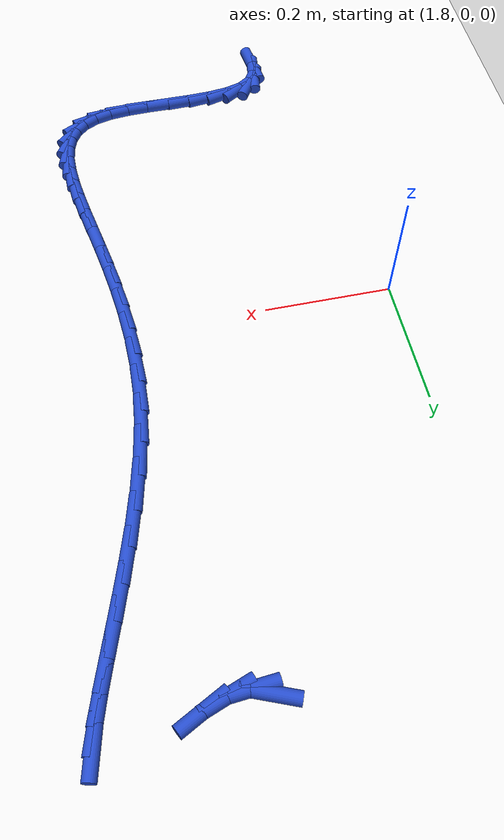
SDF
<sdf version="1.6">
 <world name="default">
  <model name="ground_plane">
   <static>1</static>
   <link name="link">
    <collision name="collision">
     <geometry><plane><normal>0 0 1</normal><size>100 100</size></plane></geometry>
     <surface><friction><ode><mu>100</mu><mu2>50</mu2></ode></friction></surface>
    </collision>
    <visual name="visual">
     <cast_shadows>0</cast_shadows>
     <geometry><plane><normal>0 0 1</normal><size>100 100</size></plane></geometry>
     <material>
      <script><uri>file://media/materials/scripts/gazebo.material</uri><name>Gazebo/WhiteGlow</name></script>
     </material>
    </visual>
   </link>
  </model>
  <model name="line">
   <link name="link_104">
    <pose>2.127107743171285 0.5627841252850406 0.01 0 1.57 -0.3819687283762479</pose>
    <collision name="collision">
     <geometry><cylinder><radius>0.01</radius><length>0.08</length></cylinder></geometry>
    </collision>
    <visual name="visual">
     <material>
      <script><name>Gazebo/Blue</name><uri>file://media/materials/scripts/gazebo.material</uri></script>
     </material>
     <geometry><cylinder><radius>0.01</radius><length>0.08</length></cylinder></geometry>
    </visual>
   </link>
   <link name="link_105">
    <pose>2.150986304245681 0.5531921712599882 0.01 0 1.57 0.07013213840415838</pose>
    <collision name="collision">
     <geometry><cylinder><radius>0.01</radius><length>0.08</length></cylinder></geometry>
    </collision>
    <visual name="visual">
     <material>
      <script><name>Gazebo/Blue</name><uri>file://media/materials/scripts/gazebo.material</uri></script>
     </material>
     <geometry><cylinder><radius>0.01</radius><length>0.08</length></cylinder></geometry>
    </visual>
   </link>
   <link name="link_106">
    <pose>2.179971391578921 0.5552282967507947 0.01 0 1.57 0.33298980344170676</pose>
    <collision name="collision">
     <geometry><cylinder><radius>0.01</radius><length>0.08</length></cylinder></geometry>
    </collision>
    <visual name="visual">
     <material>
      <script><name>Gazebo/Blue</name><uri>file://media/materials/scripts/gazebo.material</uri></script>
     </material>
     <geometry><cylinder><radius>0.01</radius><length>0.08</length></cylinder></geometry>
    </visual>
   </link>
   <link name="link_107">
    <pose>2.2124808614995484 0.5664723106703847 0.01 0 1.57 0.4560387867615656</pose>
    <collision name="collision">
     <geometry><cylinder><radius>0.01</radius><length>0.08</length></cylinder></geometry>
    </collision>
    <visual name="visual">
     <material>
      <script><name>Gazebo/Blue</name><uri>file://media/materials/scripts/gazebo.material</uri></script>
     </material>
     <geometry><cylinder><radius>0.01</radius><length>0.08</length></cylinder></geometry>
    </visual>
   </link>
   <link name="link_115">
    <pose>2.349207983742236 0.5794502217395547 0.01 0 1.57 1.3211868700105327</pose>
    <collision name="collision">
     <geometry><cylinder><radius>0.01</radius><length>0.08</length></cylinder></geometry>
    </collision>
    <visual name="visual">
     <material>
      <script><name>Gazebo/Blue</name><uri>file://media/materials/scripts/gazebo.material</uri></script>
     </material>
     <geometry><cylinder><radius>0.01</radius><length>0.08</length></cylinder></geometry>
    </visual>
   </link>
   <link name="link_116">
    <pose>2.342331722594804 0.5524766594991933 0.01 0 1.57 1.2618347544364554</pose>
    <collision name="collision">
     <geometry><cylinder><radius>0.01</radius><length>0.08</length></cylinder></geometry>
    </collision>
    <visual name="visual">
     <material>
      <script><name>Gazebo/Blue</name><uri>file://media/materials/scripts/gazebo.material</uri></script>
     </material>
     <geometry><cylinder><radius>0.01</radius><length>0.08</length></cylinder></geometry>
    </visual>
   </link>
   <link name="link_117">
    <pose>2.332085344422385 0.5203747580130524 0.01 0 1.57 1.233314412910958</pose>
    <collision name="collision">
     <geometry><cylinder><radius>0.01</radius><length>0.08</length></cylinder></geometry>
    </collision>
    <visual name="visual">
     <material>
      <script><name>Gazebo/Blue</name><uri>file://media/materials/scripts/gazebo.material</uri></script>
     </material>
     <geometry><cylinder><radius>0.01</radius><length>0.08</length></cylinder></geometry>
    </visual>
   </link>
   <link name="link_118">
    <pose>2.3192428652079937 0.4837767198730759 0.01 0 1.57 1.223092702510668</pose>
    <collision name="collision">
     <geometry><cylinder><radius>0.01</radius><length>0.08</length></cylinder></geometry>
    </collision>
    <visual name="visual">
     <material>
      <script><name>Gazebo/Blue</name><uri>file://media/materials/scripts/gazebo.material</uri></script>
     </material>
     <geometry><cylinder><radius>0.01</radius><length>0.08</length></cylinder></geometry>
    </visual>
   </link>
   <link name="link_119">
    <pose>2.3045783009346468 0.4433147476712101 0.01 0 1.57 1.2255872484355421</pose>
    <collision name="collision">
     <geometry><cylinder><radius>0.01</radius><length>0.08</length></cylinder></geometry>
    </collision>
    <visual name="visual">
     <material>
      <script><name>Gazebo/Blue</name><uri>file://media/materials/scripts/gazebo.material</uri></script>
     </material>
     <geometry><cylinder><radius>0.01</radius><length>0.08</length></cylinder></geometry>
    </visual>
   </link>
   <link name="link_120">
    <pose>2.2888656675853594 0.39962104399939913 0.01 0 1.57 1.238283188715946</pose>
    <collision name="collision">
     <geometry><cylinder><radius>0.01</radius><length>0.08</length></cylinder></geometry>
    </collision>
    <visual name="visual">
     <material>
      <script><name>Gazebo/Blue</name><uri>file://media/materials/scripts/gazebo.material</uri></script>
     </material>
     <geometry><cylinder><radius>0.01</radius><length>0.08</length></cylinder></geometry>
    </visual>
   </link>
   <link name="link_121">
    <pose>2.2728789811431476 0.3533278114495876 0.01 0 1.57 1.260278881683816</pose>
    <collision name="collision">
     <geometry><cylinder><radius>0.01</radius><length>0.08</length></cylinder></geometry>
    </collision>
    <visual name="visual">
     <material>
      <script><name>Gazebo/Blue</name><uri>file://media/materials/scripts/gazebo.material</uri></script>
     </material>
     <geometry><cylinder><radius>0.01</radius><length>0.08</length></cylinder></geometry>
    </visual>
   </link>
   <link name="link_122">
    <pose>2.2573922575910266 0.3050672526137209 0.01 0 1.57 1.2917036662351318</pose>
    <collision name="collision">
     <geometry><cylinder><radius>0.01</radius><length>0.08</length></cylinder></geometry>
    </collision>
    <visual name="visual">
     <material>
      <script><name>Gazebo/Blue</name><uri>file://media/materials/scripts/gazebo.material</uri></script>
     </material>
     <geometry><cylinder><radius>0.01</radius><length>0.08</length></cylinder></geometry>
    </visual>
   </link>
   <link name="link_123">
    <pose>2.243179512912013 0.2554715700837427 0.01 0 1.57 1.3335022272591208</pose>
    <collision name="collision">
     <geometry><cylinder><radius>0.01</radius><length>0.08</length></cylinder></geometry>
    </collision>
    <visual name="visual">
     <material>
      <script><name>Gazebo/Blue</name><uri>file://media/materials/scripts/gazebo.material</uri></script>
     </material>
     <geometry><cylinder><radius>0.01</radius><length>0.08</length></cylinder></geometry>
    </visual>
   </link>
   <link name="link_124">
    <pose>2.2310147630891226 0.2051729664515995 0.01 0 1.57 1.387395933881597</pose>
    <collision name="collision">
     <geometry><cylinder><radius>0.01</radius><length>0.08</length></cylinder></geometry>
    </collision>
    <visual name="visual">
     <material>
      <script><name>Gazebo/Blue</name><uri>file://media/materials/scripts/gazebo.material</uri></script>
     </material>
     <geometry><cylinder><radius>0.01</radius><length>0.08</length></cylinder></geometry>
    </visual>
   </link>
   <link name="link_125">
    <pose>2.2216720241053705 0.15480364430923535 0.01 0 1.57 1.4547579990284305</pose>
    <collision name="collision">
     <geometry><cylinder><radius>0.01</radius><length>0.08</length></cylinder></geometry>
    </collision>
    <visual name="visual">
     <material>
      <script><name>Gazebo/Blue</name><uri>file://media/materials/scripts/gazebo.material</uri></script>
     </material>
     <geometry><cylinder><radius>0.01</radius><length>0.08</length></cylinder></geometry>
    </visual>
   </link>
   <link name="link_126">
    <pose>2.2158638613069424 0.10497467215604218 0.01 0 1.57 1.5235692400605285</pose>
    <collision name="collision">
     <geometry><cylinder><radius>0.01</radius><length>0.08</length></cylinder></geometry>
    </collision>
    <visual name="visual">
     <material>
      <script><name>Gazebo/Blue</name><uri>file://media/materials/scripts/gazebo.material</uri></script>
     </material>
     <geometry><cylinder><radius>0.01</radius><length>0.08</length></cylinder></geometry>
    </visual>
   </link>
   <link name="link_127">
    <pose>2.213551031366264 0.05603855658038532 0.01 0 1.57 -1.5574294629648497</pose>
    <collision name="collision">
     <geometry><cylinder><radius>0.01</radius><length>0.08</length></cylinder></geometry>
    </collision>
    <visual name="visual">
     <material>
      <script><name>Gazebo/Blue</name><uri>file://media/materials/scripts/gazebo.material</uri></script>
     </material>
     <geometry><cylinder><radius>0.01</radius><length>0.08</length></cylinder></geometry>
    </visual>
   </link>
   <link name="link_128">
    <pose>2.2141908596059445 0.008174664146546108 0.01 0 1.57 -1.5056623127815352</pose>
    <collision name="collision">
     <geometry><cylinder><radius>0.01</radius><length>0.08</length></cylinder></geometry>
    </collision>
    <visual name="visual">
     <material>
      <script><name>Gazebo/Blue</name><uri>file://media/materials/scripts/gazebo.material</uri></script>
     </material>
     <geometry><cylinder><radius>0.01</radius><length>0.08</length></cylinder></geometry>
    </visual>
   </link>
   <link name="link_129">
    <pose>2.21723141435651 -0.038440822244334365 0.01 0 1.57 -1.463022308774857</pose>
    <collision name="collision">
     <geometry><cylinder><radius>0.01</radius><length>0.08</length></cylinder></geometry>
    </collision>
    <visual name="visual">
     <material>
      <script><name>Gazebo/Blue</name><uri>file://media/materials/scripts/gazebo.material</uri></script>
     </material>
     <geometry><cylinder><radius>0.01</radius><length>0.08</length></cylinder></geometry>
    </visual>
   </link>
   <link name="link_130">
    <pose>2.222120763948486 -0.08363171969111516 0.01 0 1.57 -1.4298199931551037</pose>
    <collision name="collision">
     <geometry><cylinder><radius>0.01</radius><length>0.08</length></cylinder></geometry>
    </collision>
    <visual name="visual">
     <material>
      <script><name>Gazebo/Blue</name><uri>file://media/materials/scripts/gazebo.material</uri></script>
     </material>
     <geometry><cylinder><radius>0.01</radius><length>0.08</length></cylinder></geometry>
    </visual>
   </link>
   <link name="link_131">
    <pose>2.2283069767123997 -0.1272218452926551 0.01 0 1.57 -1.4065254471774</pose>
    <collision name="collision">
     <geometry><cylinder><radius>0.01</radius><length>0.08</length></cylinder></geometry>
    </collision>
    <visual name="visual">
     <material>
      <script><name>Gazebo/Blue</name><uri>file://media/materials/scripts/gazebo.material</uri></script>
     </material>
     <geometry><cylinder><radius>0.01</radius><length>0.08</length></cylinder></geometry>
    </visual>
   </link>
   <link name="link_132">
    <pose>2.235238120978776 -0.16903501614781327 0.01 0 1.57 -1.393934767337975</pose>
    <collision name="collision">
     <geometry><cylinder><radius>0.01</radius><length>0.08</length></cylinder></geometry>
    </collision>
    <visual name="visual">
     <material>
      <script><name>Gazebo/Blue</name><uri>file://media/materials/scripts/gazebo.material</uri></script>
     </material>
     <geometry><cylinder><radius>0.01</radius><length>0.08</length></cylinder></geometry>
    </visual>
   </link>
   <link name="link_133">
    <pose>2.2423622650781416 -0.20889504935544972 0.01 0 1.57 -1.3933790511676274</pose>
    <collision name="collision">
     <geometry><cylinder><radius>0.01</radius><length>0.08</length></cylinder></geometry>
    </collision>
    <visual name="visual">
     <material>
      <script><name>Gazebo/Blue</name><uri>file://media/materials/scripts/gazebo.material</uri></script>
     </material>
     <geometry><cylinder><radius>0.01</radius><length>0.08</length></cylinder></geometry>
    </visual>
   </link>
   <link name="link_134">
    <pose>2.2491274773410206 -0.2466257620144211 0.01 0 1.57 -1.4070171951937955</pose>
    <collision name="collision">
     <geometry><cylinder><radius>0.01</radius><length>0.08</length></cylinder></geometry>
    </collision>
    <visual name="visual">
     <material>
      <script><name>Gazebo/Blue</name><uri>file://media/materials/scripts/gazebo.material</uri></script>
     </material>
     <geometry><cylinder><radius>0.01</radius><length>0.08</length></cylinder></geometry>
    </visual>
   </link>
   <link name="link_135">
    <pose>2.254981826097942 -0.28205097122358774 0.01 0 1.57 -1.4382721180454048</pose>
    <collision name="collision">
     <geometry><cylinder><radius>0.01</radius><length>0.08</length></cylinder></geometry>
    </collision>
    <visual name="visual">
     <material>
      <script><name>Gazebo/Blue</name><uri>file://media/materials/scripts/gazebo.material</uri></script>
     </material>
     <geometry><cylinder><radius>0.01</radius><length>0.08</length></cylinder></geometry>
    </visual>
   </link>
   <link name="link_136">
    <pose>2.259373379679427 -0.31499449408180813 0.01 0 1.57 -1.4924765727191125</pose>
    <collision name="collision">
     <geometry><cylinder><radius>0.01</radius><length>0.08</length></cylinder></geometry>
    </collision>
    <visual name="visual">
     <material>
      <script><name>Gazebo/Blue</name><uri>file://media/materials/scripts/gazebo.material</uri></script>
     </material>
     <geometry><cylinder><radius>0.01</radius><length>0.08</length></cylinder></geometry>
    </visual>
   </link>
   <link name="link_137">
    <pose>2.261750206416005 -0.34528014768794174 0.01 0 1.57 1.5638812929908679</pose>
    <collision name="collision">
     <geometry><cylinder><radius>0.01</radius><length>0.08</length></cylinder></geometry>
    </collision>
    <visual name="visual">
     <material>
      <script><name>Gazebo/Blue</name><uri>file://media/materials/scripts/gazebo.material</uri></script>
     </material>
     <geometry><cylinder><radius>0.01</radius><length>0.08</length></cylinder></geometry>
    </visual>
   </link>
   <link name="link_138">
    <pose>2.261560374638201 -0.3727317491408473 0.01 0 1.57 1.4362525081846227</pose>
    <collision name="collision">
     <geometry><cylinder><radius>0.01</radius><length>0.08</length></cylinder></geometry>
    </collision>
    <visual name="visual">
     <material>
      <script><name>Gazebo/Blue</name><uri>file://media/materials/scripts/gazebo.material</uri></script>
     </material>
     <geometry><cylinder><radius>0.01</radius><length>0.08</length></cylinder></geometry>
    </visual>
   </link>
   <link name="link_139">
    <pose>2.2582519526765403 -0.3971731155393837 0.01 0 1.57 1.2535424901701229</pose>
    <collision name="collision">
     <geometry><cylinder><radius>0.01</radius><length>0.08</length></cylinder></geometry>
    </collision>
    <visual name="visual">
     <material>
      <script><name>Gazebo/Blue</name><uri>file://media/materials/scripts/gazebo.material</uri></script>
     </material>
     <geometry><cylinder><radius>0.01</radius><length>0.08</length></cylinder></geometry>
    </visual>
   </link>
   <link name="link_140">
    <pose>2.2512730088615496 -0.41842806398241084 0.01 0 1.57 1.0114466026206448</pose>
    <collision name="collision">
     <geometry><cylinder><radius>0.01</radius><length>0.08</length></cylinder></geometry>
    </collision>
    <visual name="visual">
     <material>
      <script><name>Gazebo/Blue</name><uri>file://media/materials/scripts/gazebo.material</uri></script>
     </material>
     <geometry><cylinder><radius>0.01</radius><length>0.08</length></cylinder></geometry>
    </visual>
   </link>
   <link name="link_141">
    <pose>2.2400716115237542 -0.436320411568786 0.01 0 1.57 0.7319623139738143</pose>
    <collision name="collision">
     <geometry><cylinder><radius>0.01</radius><length>0.08</length></cylinder></geometry>
    </collision>
    <visual name="visual">
     <material>
      <script><name>Gazebo/Blue</name><uri>file://media/materials/scripts/gazebo.material</uri></script>
     </material>
     <geometry><cylinder><radius>0.01</radius><length>0.08</length></cylinder></geometry>
    </visual>
   </link>
   <link name="link_142">
    <pose>2.224095828993679 -0.45067397539736886 0.01 0 1.57 0.4631798452355047</pose>
    <collision name="collision">
     <geometry><cylinder><radius>0.01</radius><length>0.08</length></cylinder></geometry>
    </collision>
    <visual name="visual">
     <material>
      <script><name>Gazebo/Blue</name><uri>file://media/materials/scripts/gazebo.material</uri></script>
     </material>
     <geometry><cylinder><radius>0.01</radius><length>0.08</length></cylinder></geometry>
    </visual>
   </link>
   <link name="link_143">
    <pose>2.2027937296018525 -0.46131257256701885 0.01 0 1.57 0.24385880239161947</pose>
    <collision name="collision">
     <geometry><cylinder><radius>0.01</radius><length>0.08</length></cylinder></geometry>
    </collision>
    <visual name="visual">
     <material>
      <script><name>Gazebo/Blue</name><uri>file://media/materials/scripts/gazebo.material</uri></script>
     </material>
     <geometry><cylinder><radius>0.01</radius><length>0.08</length></cylinder></geometry>
    </visual>
   </link>
   <link name="link_144">
    <pose>2.175631782366532 -0.4680707497098349 0.01 0 1.57 0.09941860752321846</pose>
    <collision name="collision">
     <geometry><cylinder><radius>0.01</radius><length>0.08</length></cylinder></geometry>
    </collision>
    <visual name="visual">
     <material>
      <script><name>Gazebo/Blue</name><uri>file://media/materials/scripts/gazebo.material</uri></script>
     </material>
     <geometry><cylinder><radius>0.01</radius><length>0.08</length></cylinder></geometry>
    </visual>
   </link>
   <link name="link_145">
    <pose>2.1430060199396004 -0.4713250866715781 0.01 0 1.57 0.025126925178325567</pose>
    <collision name="collision">
     <geometry><cylinder><radius>0.01</radius><length>0.08</length></cylinder></geometry>
    </collision>
    <visual name="visual">
     <material>
      <script><name>Gazebo/Blue</name><uri>file://media/materials/scripts/gazebo.material</uri></script>
     </material>
     <geometry><cylinder><radius>0.01</radius><length>0.08</length></cylinder></geometry>
    </visual>
   </link>
   <link name="link_146">
    <pose>2.1066610370112104 -0.47223851658140964 0.01 0 1.57 -0.005307459929114949</pose>
    <collision name="collision">
     <geometry><cylinder><radius>0.01</radius><length>0.08</length></cylinder></geometry>
    </collision>
    <visual name="visual">
     <material>
      <script><name>Gazebo/Blue</name><uri>file://media/materials/scripts/gazebo.material</uri></script>
     </material>
     <geometry><cylinder><radius>0.01</radius><length>0.08</length></cylinder></geometry>
    </visual>
   </link>
   <link name="link_147">
    <pose>2.0684472825112943 -0.47203569670623685 0.01 0 1.57 -0.002469449959656698</pose>
    <collision name="collision">
     <geometry><cylinder><radius>0.01</radius><length>0.08</length></cylinder></geometry>
    </collision>
    <visual name="visual">
     <material>
      <script><name>Gazebo/Blue</name><uri>file://media/materials/scripts/gazebo.material</uri></script>
     </material>
     <geometry><cylinder><radius>0.01</radius><length>0.08</length></cylinder></geometry>
    </visual>
   </link>
   <link name="link_148">
    <pose>2.0302152053697835 -0.4719412843129674 0.01 0 1.57 0.03401583109435959</pose>
    <collision name="collision">
     <geometry><cylinder><radius>0.01</radius><length>0.08</length></cylinder></geometry>
    </collision>
    <visual name="visual">
     <material>
      <script><name>Gazebo/Blue</name><uri>file://media/materials/scripts/gazebo.material</uri></script>
     </material>
     <geometry><cylinder><radius>0.01</radius><length>0.08</length></cylinder></geometry>
    </visual>
   </link>
   <link name="link_149">
    <pose>1.9938152545166061 -0.4731799366685083 0.01 0 1.57 0.11551881007164766</pose>
    <collision name="collision">
     <geometry><cylinder><radius>0.01</radius><length>0.08</length></cylinder></geometry>
    </collision>
    <visual name="visual">
     <material>
      <script><name>Gazebo/Blue</name><uri>file://media/materials/scripts/gazebo.material</uri></script>
     </material>
     <geometry><cylinder><radius>0.01</radius><length>0.08</length></cylinder></geometry>
    </visual>
   </link>
   <link name="link_150">
    <pose>1.9610978788816966 -0.47697631103976734 0.01 0 1.57 0.2718872843589101</pose>
    <collision name="collision">
     <geometry><cylinder><radius>0.01</radius><length>0.08</length></cylinder></geometry>
    </collision>
    <visual name="visual">
     <material>
      <script><name>Gazebo/Blue</name><uri>file://media/materials/scripts/gazebo.material</uri></script>
     </material>
     <geometry><cylinder><radius>0.01</radius><length>0.08</length></cylinder></geometry>
    </visual>
   </link>
   <link name="link_151">
    <pose>1.9339135273949832 -0.48455506469365145 0.01 0 1.57 0.5661062600340473</pose>
    <collision name="collision">
     <geometry><cylinder><radius>0.01</radius><length>0.08</length></cylinder></geometry>
    </collision>
    <visual name="visual">
     <material>
      <script><name>Gazebo/Blue</name><uri>file://media/materials/scripts/gazebo.material</uri></script>
     </material>
     <geometry><cylinder><radius>0.01</radius><length>0.08</length></cylinder></geometry>
    </visual>
   </link>
   <link name="link_152">
    <pose>1.9141106966642876 -0.49713954091141177 0.01 0 1.57 1.0170545792443375</pose>
    <collision name="collision">
     <geometry><cylinder><radius>0.01</radius><length>0.08</length></cylinder></geometry>
    </collision>
    <visual name="visual">
     <material>
      <script><name>Gazebo/Blue</name><uri>file://media/materials/scripts/gazebo.material</uri></script>
     </material>
     <geometry><cylinder><radius>0.01</radius><length>0.08</length></cylinder></geometry>
    </visual>
   </link>
   <link name="link_153">
    <pose>1.9027901000376841 -0.5154497969272364 0.01 0 1.57 1.4183014336685793</pose>
    <collision name="collision">
     <geometry><cylinder><radius>0.01</radius><length>0.08</length></cylinder></geometry>
    </collision>
    <visual name="visual">
     <material>
      <script><name>Gazebo/Blue</name><uri>file://media/materials/scripts/gazebo.material</uri></script>
     </material>
     <geometry><cylinder><radius>0.01</radius><length>0.08</length></cylinder></geometry>
    </visual>
   </link>
   <link name="link_154">
    <pose>1.8991791536979472 -0.5389450910566286 0.01 0 1.57 -1.4625265287689846</pose>
    <collision name="collision">
     <geometry><cylinder><radius>0.01</radius><length>0.08</length></cylinder></geometry>
    </collision>
    <visual name="visual">
     <material>
      <script><name>Gazebo/Blue</name><uri>file://media/materials/scripts/gazebo.material</uri></script>
     </material>
     <geometry><cylinder><radius>0.01</radius><length>0.08</length></cylinder></geometry>
    </visual>
   </link>
  </model>
 </world>
</sdf>
